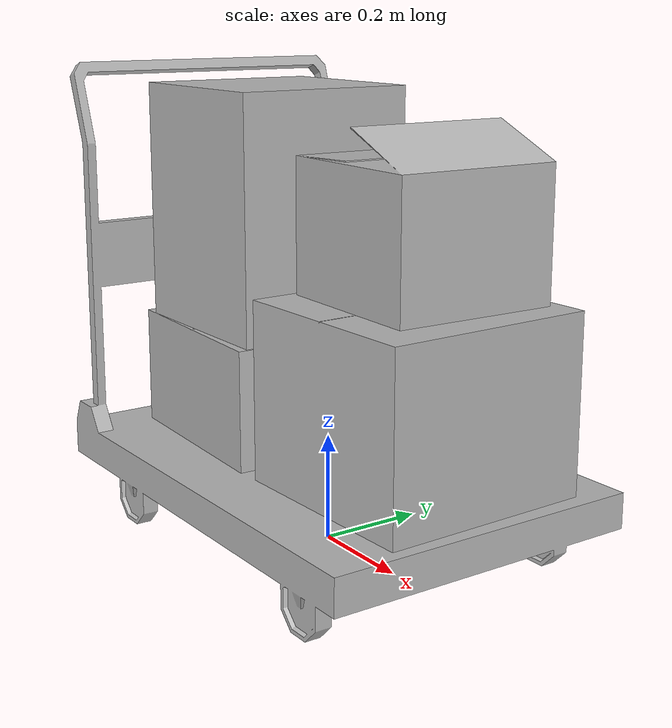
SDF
<?xml version='1.0' encoding='utf-8'?>
<sdf version="1.6">
  <model name="TrolleyBox1">
   <static>true</static>
    <link name="body">
      <pose>0 0 0 0 0 0</pose>

      <visual name="visual">
        <geometry>
          <mesh>
            <uri>model://TrolleyBox1/meshes/TrolleyBox1.obj</uri>
          </mesh>
        </geometry>
        <plugin filename="gz-sim-label-system" name="gz::sim::systems::Label">
          <label>86</label>
        </plugin>
      </visual>

      <collision name="collision">
        <geometry>
          <mesh>
            <uri>model://TrolleyBox1/meshes/TrolleyBox1_Col.obj</uri>
          </mesh>
        </geometry>
      </collision>

    </link>
  </model>
</sdf>
